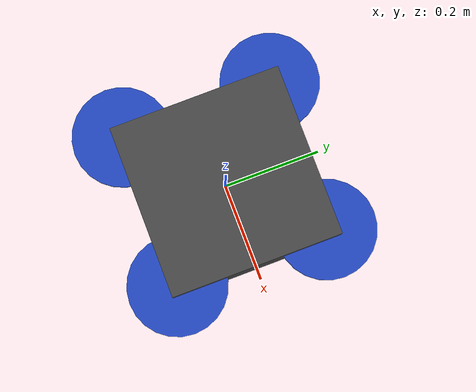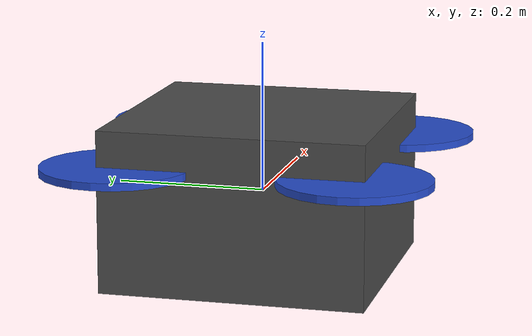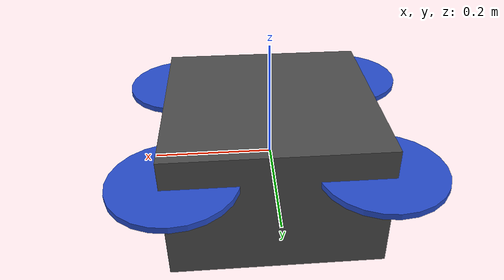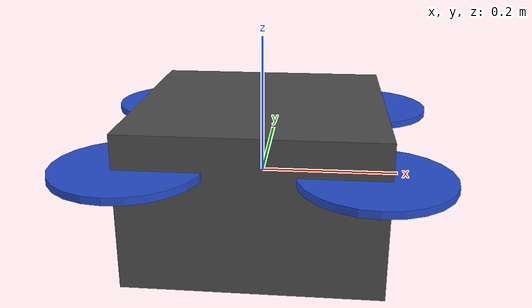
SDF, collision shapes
<?xml version="1.0" encoding="UTF-8"?>
<sdf version='1.6'>
    <model name="drone_indoor_base">

        <!--  Base Link -->
        <link name='base_link'>
            <pose frame=''>0 0 0 0 -0 0</pose>
            <inertial>
                <pose frame=''>7.2e-05 3.9e-05 -0.001997 0 -0 0</pose>
                <mass>1.34</mass>
                <inertia>
                    <ixx>0.029125</ixx>
                    <ixy>0</ixy>
                    <ixz>0</ixz>
                    <iyy>0.029125</iyy>
                    <iyz>0</iyz>
                    <izz>0.055225</izz>
                </inertia>
            </inertial>
            <collision name='base_link_collision'>
                <pose frame=''>0 0 0 0 -0 0</pose>
                <geometry>
                    <box>
                        <size>0.35 0.35 0.215</size>
                    </box>
                </geometry>
                <surface>
                    <contact>
                        <ode>
                            <min_depth>0.001</min_depth>
                            <max_vel>0</max_vel>
                        </ode>
                    </contact>
                    <friction>
                        <ode />
                    </friction>
                </surface>
            </collision>
            <visual name='base_link_visual'>
                <pose frame=''>0 0 0 0 -0 0</pose>
                <geometry>
                    <mesh>
                        <scale>1 1 1</scale>
                        <uri>model://drone_indoor_base/meshes/base_link_reduzido.stl</uri>
                    </mesh>
                </geometry>
                <material>
                    <script>
                        <name>Gazebo/DarkGrey</name>
                        <uri>file://media/materials/scripts/gazebo.material</uri>
                    </script>
                </material>
            </visual>
            <gravity>1</gravity>
            <velocity_decay />
        </link>

        <!--  Rotor 0 - Front right -->
        <link name='rotor_0'>
            <pose frame=''>0.15526 -0.15894 0.053732 0 -0 0</pose>
            <inertial>
                <pose frame=''>0 0 0.004785 0 -0 0</pose>
                <mass>0.0061054</mass>
                <inertia>
                    <ixx>9.75e-07</ixx>
                    <ixy>0</ixy>
                    <ixz>0</ixz>
                    <iyy>0.000273104</iyy>
                    <iyz>0</iyz>
                    <izz>0.000274004</izz>
                </inertia>
            </inertial>
            <collision name='rotor_0_collision'>
                <pose frame=''>0 0 0 0 -0 0</pose>
                <geometry>
                    <cylinder>
                        <radius>0.100</radius>
                        <length>0.01</length>
                    </cylinder>
                </geometry>
            </collision>
            <visual name='rotor_0_visual'>
                <pose frame=''>0 0 0 0 -0 0</pose>
                <geometry>
                    <mesh>
                        <scale>1 1 1</scale>
                        <uri>model://drone_indoor_base/meshes/front_right_rotor.STL</uri>
                    </mesh>
                </geometry>
                <material>
                    <script>
                        <name>Gazebo/Blue</name>
                        <uri>file://media/materials/scripts/gazebo.material</uri>
                    </script>
                </material>
            </visual>
            <gravity>1</gravity>
            <velocity_decay />
        </link>
        <joint name='rotor_0_joint' type='revolute'>
            <child>rotor_0</child>
            <parent>base_link</parent>
            <axis>
                <xyz>0 0 1</xyz>
                <limit>
                    <lower>-1e+16</lower>
                    <upper>1e+16</upper>
                </limit>
                <dynamics>
                    <spring_reference>0</spring_reference>
                    <spring_stiffness>0</spring_stiffness>
                </dynamics>
                <use_parent_model_frame>1</use_parent_model_frame>
            </axis>
        </joint>

        <!--  Rotor 1 - Back left -->
        <link name='rotor_1'>
            <pose frame=''>-0.15819 0.15342 0.055002 0 -0 0</pose>
            <inertial>
                <pose frame=''>0 0.004785 -0 0 -0 0</pose>
                <mass>0.0061058</mass>
                <inertia>
                    <ixx>9.75e-07</ixx>
                    <ixy>0</ixy>
                    <ixz>0</ixz>
                    <iyy>0.000273104</iyy>
                    <iyz>0</iyz>
                    <izz>0.000274004</izz>
                </inertia>
            </inertial>
            <collision name='rotor_1_collision'>
                <pose frame=''>0 0 0 0 -0 0</pose>
                <geometry>
                    <cylinder>
                        <radius>0.100</radius>
                        <length>0.01</length>
                    </cylinder>
                </geometry>
                <surface>
                    <contact>
                        <ode />
                    </contact>
                    <friction>
                        <ode />
                    </friction>
                </surface>
            </collision>
            <visual name='rotor_1_visual'>
                <pose frame=''>0 0 0 0 -0 0</pose>
                <geometry>
                    <mesh>
                        <scale>1 1 1</scale>
                        <uri>model://drone_indoor_base/meshes/back_left_rotor.STL</uri>
                    </mesh>
                </geometry>
                <material>
                    <script>
                        <name>Gazebo/Blue</name>
                        <uri>file://media/materials/scripts/gazebo.material</uri>
                    </script>
                </material>
            </visual>
            <gravity>1</gravity>
            <velocity_decay />
        </link>
        <joint name='rotor_1_joint' type='revolute'>
            <child>rotor_1</child>
            <parent>base_link</parent>
            <axis>
                <xyz>0 0 1</xyz>
                <limit>
                    <lower>-1e+16</lower>
                    <upper>1e+16</upper>
                </limit>
                <dynamics>
                    <spring_reference>0</spring_reference>
                    <spring_stiffness>0</spring_stiffness>
                </dynamics>
                <use_parent_model_frame>1</use_parent_model_frame>
            </axis>
        </joint>

        <!--  Rotor 2 - Front left -->
        <link name='rotor_2'>
            <pose frame=''>0.15517 0.15367 0.054986 0 -0 0</pose>
            <inertial>
                <pose frame=''>-0 0.004785 -0 0 -0 0</pose>
                <mass>0.0061058</mass>
                <inertia>
                    <ixx>9.75e-07</ixx>
                    <ixy>0</ixy>
                    <ixz>0</ixz>
                    <iyy>0.000273104</iyy>
                    <iyz>0</iyz>
                    <izz>0.000274004</izz>
                </inertia>
            </inertial>
            <collision name='rotor_2_collision'>
                <pose frame=''>0 0 0 0 -0 0</pose>
                <geometry>
                    <cylinder>
                        <radius>0.100</radius>
                        <length>0.01</length>
                    </cylinder>
                </geometry>
                <surface>
                    <contact>
                        <ode />
                    </contact>
                    <friction>
                        <ode />
                    </friction>
                </surface>
            </collision>
            <visual name='rotor_2_visual'>
                <pose frame=''>0 0 0 0 -0 0</pose>
                <geometry>
                    <mesh>
                        <scale>1 1 1</scale>
                        <uri>model://drone_indoor_base/meshes/front_left_rotor.STL</uri>
                    </mesh>
                </geometry>
                <material>
                    <script>
                        <name>Gazebo/Blue</name>
                        <uri>file://media/materials/scripts/gazebo.material</uri>
                    </script>
                </material>
            </visual>
            <gravity>1</gravity>
            <velocity_decay />
        </link>
        <joint name='rotor_2_joint' type='revolute'>
            <child>rotor_2</child>
            <parent>base_link</parent>
            <axis>
                <xyz>0 0 1</xyz>
                <limit>
                    <lower>-1e+16</lower>
                    <upper>1e+16</upper>
                </limit>
                <dynamics>
                    <spring_reference>0</spring_reference>
                    <spring_stiffness>0</spring_stiffness>
                </dynamics>
                <use_parent_model_frame>1</use_parent_model_frame>
            </axis>
        </joint>

        <!--  Rotor 3 - Back right -->
        <link name='rotor_3'>
            <pose frame=''>-0.15813 -0.1588 0.056038 0 0 0</pose>
            <inertial>
                <pose frame=''>0 -0 0.004786 0 -0 0</pose>
                <mass>0.0061058</mass>
                <inertia>
                    <ixx>9.75e-07</ixx>
                    <ixy>0</ixy>
                    <ixz>0</ixz>
                    <iyy>0.000273104</iyy>
                    <iyz>0</iyz>
                    <izz>0.000274004</izz>
                </inertia>
            </inertial>
            <collision name='rotor_3_collision'>
                <pose frame=''>0 0 0 0 -0 0</pose>
                <geometry>
                    <cylinder>
                        <radius>0.100</radius>
                        <length>0.01</length>
                    </cylinder>
                </geometry>
                <surface>
                    <contact>
                        <ode />
                    </contact>
                    <friction>
                        <ode />
                    </friction>
                </surface>
            </collision>
            <visual name='rotor_3_visual'>
                <pose frame=''>0 0 0 0 -0 0</pose>
                <geometry>
                    <mesh>
                        <scale>1 1 1</scale>
                        <uri>model://rotors_description/meshes/iris_prop_cw.dae</uri>
                    </mesh>
                </geometry>
                <material>
                    <script>
                        <name>Gazebo/Blue</name>
                        <uri>file://media/materials/scripts/gazebo.material</uri>
                    </script>
                </material>
            </visual>
            <gravity>1</gravity>
            <velocity_decay />
        </link>
        <joint name='rotor_3_joint' type='revolute'>
            <child>rotor_3</child>
            <parent>base_link</parent>
            <axis>
                <xyz>0 0 1</xyz>
                <limit>
                    <lower>-1e+16</lower>
                    <upper>1e+16</upper>
                </limit>
                <dynamics>
                    <spring_reference>0</spring_reference>
                    <spring_stiffness>0</spring_stiffness>
                </dynamics>
                <use_parent_model_frame>1</use_parent_model_frame>
            </axis>
        </joint>

        <!-- IMU link -->
        <link name='/imu_link'>
            <pose frame=''>0 0 0 0 -0 0</pose>
            <inertial>
                <pose frame=''>0 0 0 0 -0 0</pose>
                <mass>0.015</mass>
                <inertia>
                    <ixx>1e-05</ixx>
                    <ixy>0</ixy>
                    <ixz>0</ixz>
                    <iyy>1e-05</iyy>
                    <iyz>0</iyz>
                    <izz>1e-05</izz>
                </inertia>
            </inertial>
        </link>
        <joint name='/imu_joint' type='revolute'>
            <child>/imu_link</child>
            <parent>base_link</parent>
            <axis>
                <xyz>1 0 0</xyz>
                <limit>
                    <lower>0</lower>
                    <upper>0</upper>
                    <effort>0</effort>
                    <velocity>0</velocity>
                </limit>
                <dynamics>
                    <spring_reference>0</spring_reference>
                    <spring_stiffness>0</spring_stiffness>
                </dynamics>
                <use_parent_model_frame>1</use_parent_model_frame>
            </axis>
        </joint>

        <!-- PLUGINS -->

        <!-- Rosbag -->
        <plugin name='rosbag' filename='libgazebo_multirotor_base_plugin.so'>
            <robotNamespace />
            <linkName>base_link</linkName>
            <rotorVelocitySlowdownSim>10</rotorVelocitySlowdownSim>
        </plugin>

        <!-- Rotor 0 plugin -->
        <plugin name='front_right_motor_model' filename='libgazebo_motor_model.so'>
            <robotNamespace />
            <jointName>rotor_0_joint</jointName>
            <linkName>rotor_0</linkName>
            <turningDirection>ccw</turningDirection>
            <timeConstantUp>0.0125</timeConstantUp>
            <timeConstantDown>0.025</timeConstantDown>
            <maxRotVelocity>1100</maxRotVelocity>
            <motorConstant>8.54858e-06</motorConstant>
            <momentConstant>0.06</momentConstant>
            <commandSubTopic>/gazebo/command/motor_speed</commandSubTopic>
            <motorNumber>0</motorNumber>
            <rotorDragCoefficient>0.000175</rotorDragCoefficient>
            <rollingMomentCoefficient>1e-06</rollingMomentCoefficient>
            <motorSpeedPubTopic>/motor_speed/0</motorSpeedPubTopic>
            <rotorVelocitySlowdownSim>10</rotorVelocitySlowdownSim>
        </plugin>
        <!-- Rotor 1 plugin -->
        <plugin name='back_left_motor_model' filename='libgazebo_motor_model.so'>
            <robotNamespace />
            <jointName>rotor_1_joint</jointName>
            <linkName>rotor_1</linkName>
            <turningDirection>ccw</turningDirection>
            <timeConstantUp>0.0125</timeConstantUp>
            <timeConstantDown>0.025</timeConstantDown>
            <maxRotVelocity>1100</maxRotVelocity>
            <motorConstant>8.54858e-06</motorConstant>
            <momentConstant>0.06</momentConstant>
            <commandSubTopic>/gazebo/command/motor_speed</commandSubTopic>
            <motorNumber>1</motorNumber>
            <rotorDragCoefficient>0.000175</rotorDragCoefficient>
            <rollingMomentCoefficient>1e-06</rollingMomentCoefficient>
            <motorSpeedPubTopic>/motor_speed/1</motorSpeedPubTopic>
            <rotorVelocitySlowdownSim>10</rotorVelocitySlowdownSim>
        </plugin>
        <!-- Rotor 2 plugin -->
        <plugin name='front_left_motor_model' filename='libgazebo_motor_model.so'>
            <robotNamespace />
            <jointName>rotor_2_joint</jointName>
            <linkName>rotor_2</linkName>
            <turningDirection>cw</turningDirection>
            <timeConstantUp>0.0125</timeConstantUp>
            <timeConstantDown>0.025</timeConstantDown>
            <maxRotVelocity>1100</maxRotVelocity>
            <motorConstant>8.54858e-06</motorConstant>
            <momentConstant>0.06</momentConstant>
            <commandSubTopic>/gazebo/command/motor_speed</commandSubTopic>
            <motorNumber>2</motorNumber>
            <rotorDragCoefficient>0.000175</rotorDragCoefficient>
            <rollingMomentCoefficient>1e-06</rollingMomentCoefficient>
            <motorSpeedPubTopic>/motor_speed/2</motorSpeedPubTopic>
            <rotorVelocitySlowdownSim>10</rotorVelocitySlowdownSim>
        </plugin>
        <!-- Rotor 3 plugin -->
        <plugin name='back_right_motor_model' filename='libgazebo_motor_model.so'>
            <robotNamespace />
            <jointName>rotor_3_joint</jointName>
            <linkName>rotor_3</linkName>
            <turningDirection>cw</turningDirection>
            <timeConstantUp>0.0125</timeConstantUp>
            <timeConstantDown>0.025</timeConstantDown>
            <maxRotVelocity>1100</maxRotVelocity>
            <motorConstant>8.54858e-06</motorConstant>
            <momentConstant>0.06</momentConstant>
            <commandSubTopic>/gazebo/command/motor_speed</commandSubTopic>
            <motorNumber>3</motorNumber>
            <rotorDragCoefficient>0.000175</rotorDragCoefficient>
            <rollingMomentCoefficient>1e-06</rollingMomentCoefficient>
            <motorSpeedPubTopic>/motor_speed/3</motorSpeedPubTopic>
            <rotorVelocitySlowdownSim>10</rotorVelocitySlowdownSim>
        </plugin>

        <!-- GPS -->
        <plugin name='gps_plugin' filename='libgazebo_gps_plugin.so'>
            <robotNamespace/>
            <gpsNoise>1</gpsNoise>
        </plugin>

        <!-- Magnetometer -->
        <plugin name='magnetometer_plugin' filename='libgazebo_magnetometer_plugin.so'>
            <robotNamespace />
            <pubRate>100</pubRate>
            <noiseDensity>0.0004</noiseDensity>
            <randomWalk>6.4e-06</randomWalk>
            <biasCorrelationTime>600</biasCorrelationTime>
            <magTopic>/mag</magTopic>
        </plugin>

        <!-- Barometer -->
        <plugin name='barometer_plugin' filename='libgazebo_barometer_plugin.so'>
            <robotNamespace />
            <pubRate>50</pubRate>
            <baroTopic>/baro</baroTopic>
        </plugin>

        <!-- MAVLink interface -->
        <plugin name='mavlink_interface' filename='libgazebo_mavlink_interface.so'>
            <robotNamespace />
            <imuSubTopic>/imu</imuSubTopic>
            <gpsSubTopic>/gps</gpsSubTopic>
            <magSubTopic>/mag</magSubTopic>
            <baroSubTopic>/baro</baroSubTopic>
            <mavlink_addr>INADDR_ANY</mavlink_addr>
            <mavlink_udp_port>14560</mavlink_udp_port>
            <mavlink_tcp_port>4560</mavlink_tcp_port>
            <serialEnabled>0</serialEnabled>
            <serialDevice>/dev/ttyACM0</serialDevice>
            <baudRate>921600</baudRate>
            <qgc_addr>INADDR_ANY</qgc_addr>
            <qgc_udp_port>14550</qgc_udp_port>
            <sdk_addr>INADDR_ANY</sdk_addr>
            <sdk_udp_port>14540</sdk_udp_port>
            <hil_mode>0</hil_mode>
            <hil_state_level>0</hil_state_level>
            <vehicle_is_tailsitter>0</vehicle_is_tailsitter>
            <send_vision_estimation>1</send_vision_estimation>
            <send_odometry>0</send_odometry>
            <enable_lockstep>1</enable_lockstep>
            <use_tcp>1</use_tcp>
            <motorSpeedCommandPubTopic>/gazebo/command/motor_speed</motorSpeedCommandPubTopic>
            <control_channels>
                <channel name='rotor1'>
                    <input_index>0</input_index>
                    <input_offset>0</input_offset>
                    <input_scaling>1000</input_scaling>
                    <zero_position_disarmed>0</zero_position_disarmed>
                    <zero_position_armed>100</zero_position_armed>
                    <joint_control_type>velocity</joint_control_type>
                </channel>
                <channel name='rotor2'>
                    <input_index>1</input_index>
                    <input_offset>0</input_offset>
                    <input_scaling>1000</input_scaling>
                    <zero_position_disarmed>0</zero_position_disarmed>
                    <zero_position_armed>100</zero_position_armed>
                    <joint_control_type>velocity</joint_control_type>
                </channel>
                <channel name='rotor3'>
                    <input_index>2</input_index>
                    <input_offset>0</input_offset>
                    <input_scaling>1000</input_scaling>
                    <zero_position_disarmed>0</zero_position_disarmed>
                    <zero_position_armed>100</zero_position_armed>
                    <joint_control_type>velocity</joint_control_type>
                </channel>
                <channel name='rotor4'>
                    <input_index>3</input_index>
                    <input_offset>0</input_offset>
                    <input_scaling>1000</input_scaling>
                    <zero_position_disarmed>0</zero_position_disarmed>
                    <zero_position_armed>100</zero_position_armed>
                    <joint_control_type>velocity</joint_control_type>
                </channel>
                <channel name='rotor5'>
                    <input_index>4</input_index>
                    <input_offset>1</input_offset>
                    <input_scaling>324.6</input_scaling>
                    <zero_position_disarmed>0</zero_position_disarmed>
                    <zero_position_armed>0</zero_position_armed>
                    <joint_control_type>velocity</joint_control_type>
                    <joint_control_pid>
                        <p>0.1</p>
                        <i>0</i>
                        <d>0</d>
                        <iMax>0.0</iMax>
                        <iMin>0.0</iMin>
                        <cmdMax>2</cmdMax>
                        <cmdMin>-2</cmdMin>
                    </joint_control_pid>
                    <joint_name>zephyr_delta_wing::propeller_joint</joint_name>
                </channel>
                <channel name='rotor6'>
                    <input_index>5</input_index>
                    <input_offset>0</input_offset>
                    <input_scaling>0.524</input_scaling>
                    <zero_position_disarmed>0</zero_position_disarmed>
                    <zero_position_armed>0</zero_position_armed>
                    <joint_control_type>position</joint_control_type>
                    <joint_name>zephyr_delta_wing::flap_left_joint</joint_name>
                    <joint_control_pid>
                        <p>10.0</p>
                        <i>0</i>
                        <d>0</d>
                        <iMax>0</iMax>
                        <iMin>0</iMin>
                        <cmdMax>20</cmdMax>
                        <cmdMin>-20</cmdMin>
                    </joint_control_pid>
                </channel>
                <channel name='rotor7'>
                    <input_index>6</input_index>
                    <input_offset>0</input_offset>
                    <input_scaling>0.524</input_scaling>
                    <zero_position_disarmed>0</zero_position_disarmed>
                    <zero_position_armed>0</zero_position_armed>
                    <joint_control_type>position</joint_control_type>
                    <joint_name>zephyr_delta_wing::flap_right_joint</joint_name>
                    <joint_control_pid>
                        <p>10.0</p>
                        <i>0</i>
                        <d>0</d>
                        <iMax>0</iMax>
                        <iMin>0</iMin>
                        <cmdMax>20</cmdMax>
                        <cmdMin>-20</cmdMin>
                    </joint_control_pid>
                </channel>
                <channel name='rotor8'>
                    <input_index>7</input_index>
                    <input_offset>0</input_offset>
                    <input_scaling>0.524</input_scaling>
                    <zero_position_disarmed>0</zero_position_disarmed>
                    <zero_position_armed>0</zero_position_armed>
                    <joint_control_type>position</joint_control_type>
                </channel>
            </control_channels>
        </plugin>

        <!-- IMU -->
        <plugin name='rotors_gazebo_imu_plugin' filename='libgazebo_imu_plugin.so'>
            <robotNamespace />
            <linkName>/imu_link</linkName>
            <imuTopic>/imu</imuTopic>
            <gyroscopeNoiseDensity>0.00018665</gyroscopeNoiseDensity>
            <gyroscopeRandomWalk>3.8785e-05</gyroscopeRandomWalk>
            <gyroscopeBiasCorrelationTime>1000.0</gyroscopeBiasCorrelationTime>
            <gyroscopeTurnOnBiasSigma>0.0087</gyroscopeTurnOnBiasSigma>
            <accelerometerNoiseDensity>0.00186</accelerometerNoiseDensity>
            <accelerometerRandomWalk>0.006</accelerometerRandomWalk>
            <accelerometerBiasCorrelationTime>300.0</accelerometerBiasCorrelationTime>
            <accelerometerTurnOnBiasSigma>0.196</accelerometerTurnOnBiasSigma>
        </plugin>

        <!-- Wind -->
        <plugin name='wind_gazebo' filename='libgazebo_wind_plugin.so'>
            <robotNamespace />
            <linkName>base_link</linkName>
            <xyzOffset>0 0 0</xyzOffset>
            <windForceMean>0</windForceMean>
            <windForceMax>0</windForceMax>
            <windForceVariance>0</windForceVariance>
            <windDirectionMean>10 0 0</windDirectionMean>
            <windDirectionVariance>0</windDirectionVariance>
        </plugin>
    </model>
</sdf>
